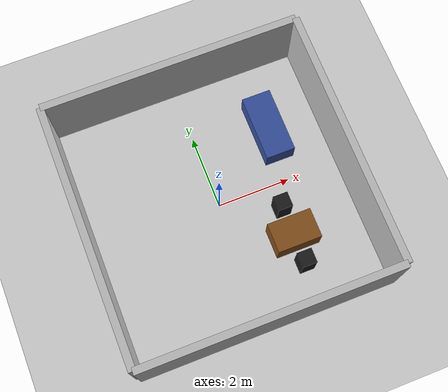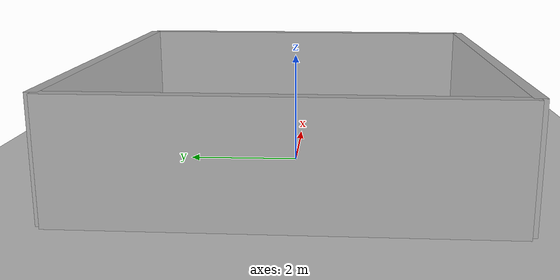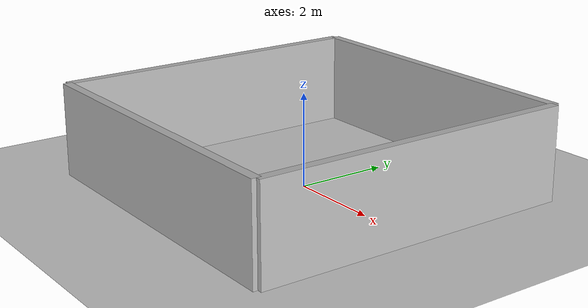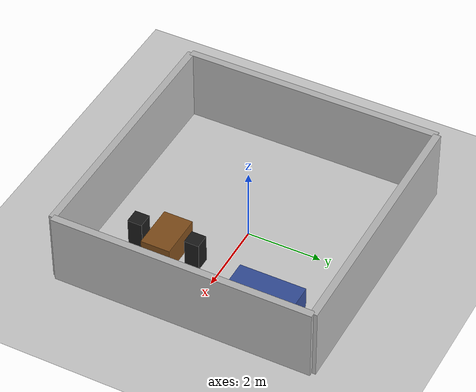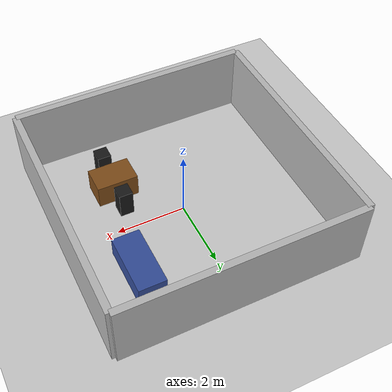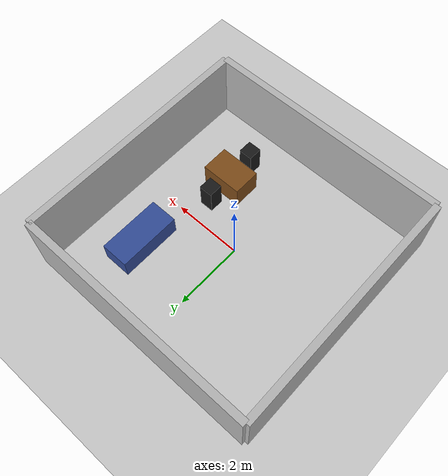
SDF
<?xml version="1.0" ?>
<sdf version="1.8">
  <world name="default">

    <plugin filename="gz-sim-physics-system" name="gz::sim::systems::Physics"/>
    <plugin filename="gz-sim-user-commands-system" name="gz::sim::systems::UserCommands"/>
    <plugin filename="gz-sim-scene-broadcaster-system" name="gz::sim::systems::SceneBroadcaster"/>
    <plugin filename="gz-sim-sensors-system" name="gz::sim::systems::Sensors">
      <render_engine>ogre2</render_engine>
    </plugin>

    <!-- Sun -->
    <light type="directional" name="sun">
      <cast_shadows>true</cast_shadows>
      <pose>0 0 10 0 0 0</pose>
      <diffuse>0.8 0.8 0.8 1</diffuse>
      <specular>0.2 0.2 0.2 1</specular>
      <direction>-0.5 0.1 -0.9</direction>
    </light>

    <!-- Ground Plane -->
    <model name="ground_plane">
      <static>true</static>
      <link name="link">
        <collision name="collision">
          <geometry><plane><normal>0 0 1</normal><size>100 100</size></plane></geometry>
        </collision>
        <visual name="visual">
          <geometry><plane><normal>0 0 1</normal><size>100 100</size></plane></geometry>
          <material>
            <ambient>0.8 0.8 0.8 1</ambient>
            <diffuse>0.8 0.8 0.8 1</diffuse>
          </material>
        </visual>
      </link>
    </model>

    <!-- SOFA -->
    <model name="sofa">
      <pose>2.0 1.5 0.3 0 0 0</pose>
      <static>true</static>
      <link name="link">
        <visual name="visual">
          <geometry><box><size>0.8 1.8 0.6</size></box></geometry>
          <material><ambient>0.2 0.3 0.6 1</ambient><diffuse>0.2 0.3 0.6 1</diffuse></material>
        </visual>
        <collision name="collision">
          <geometry><box><size>0.8 1.8 0.6</size></box></geometry>
        </collision>
      </link>
    </model>

    <!-- TABLE -->
    <model name="table">
      <pose>1.5 -1.5 0.35 0 0 0</pose>
      <static>true</static>
      <link name="link">
        <visual name="visual">
          <geometry><box><size>1.2 0.8 0.7</size></box></geometry>
          <material><ambient>0.5 0.3 0.1 1</ambient><diffuse>0.5 0.3 0.1 1</diffuse></material>
        </visual>
        <collision name="collision">
          <geometry><box><size>1.2 0.8 0.7</size></box></geometry>
        </collision>
      </link>
    </model>

    <!-- CHAIR 1 -->
    <model name="chair_1">
      <pose>1.5 -0.7 0.4 0 0 0</pose>
      <static>true</static>
      <link name="link">
        <visual name="visual">
          <geometry><box><size>0.4 0.4 0.8</size></box></geometry>
          <material><ambient>0.1 0.1 0.1 1</ambient><diffuse>0.1 0.1 0.1 1</diffuse></material>
        </visual>
        <collision name="collision">
          <geometry><box><size>0.4 0.4 0.8</size></box></geometry>
        </collision>
      </link>
    </model>

    <!-- CHAIR 2 -->
    <model name="chair_2">
      <pose>1.5 -2.3 0.4 0 0 0</pose>
      <static>true</static>
      <link name="link">
        <visual name="visual">
          <geometry><box><size>0.4 0.4 0.8</size></box></geometry>
          <material><ambient>0.1 0.1 0.1 1</ambient><diffuse>0.1 0.1 0.1 1</diffuse></material>
        </visual>
        <collision name="collision">
          <geometry><box><size>0.4 0.4 0.8</size></box></geometry>
        </collision>
      </link>
    </model>

    <!-- ROOM BOUNDARY WALLS -->
    <model name="wall_north">
      <pose>0 3.5 1.0 0 0 0</pose>
      <static>true</static>
      <link name="link">
        <visual name="visual"><geometry><box><size>7.0 0.2 2.0</size></box></geometry></visual>
        <collision name="collision"><geometry><box><size>7.0 0.2 2.0</size></box></geometry></collision>
      </link>
    </model>

    <model name="wall_south">
      <pose>0 -3.5 1.0 0 0 0</pose>
      <static>true</static>
      <link name="link">
        <visual name="visual"><geometry><box><size>7.0 0.2 2.0</size></box></geometry></visual>
        <collision name="collision"><geometry><box><size>7.0 0.2 2.0</size></box></geometry></collision>
      </link>
    </model>

    <model name="wall_east">
      <pose>3.5 0 1.0 0 0 0</pose>
      <static>true</static>
      <link name="link">
        <visual name="visual"><geometry><box><size>0.2 7.0 2.0</size></box></geometry></visual>
        <collision name="collision"><geometry><box><size>0.2 7.0 2.0</size></box></geometry></collision>
      </link>
    </model>

    <model name="wall_west">
      <pose>-3.5 0 1.0 0 0 0</pose>
      <static>true</static>
      <link name="link">
        <visual name="visual"><geometry><box><size>0.2 7.0 2.0</size></box></geometry></visual>
        <collision name="collision"><geometry><box><size>0.2 7.0 2.0</size></box></geometry></collision>
      </link>
    </model>

  </world>
</sdf>
